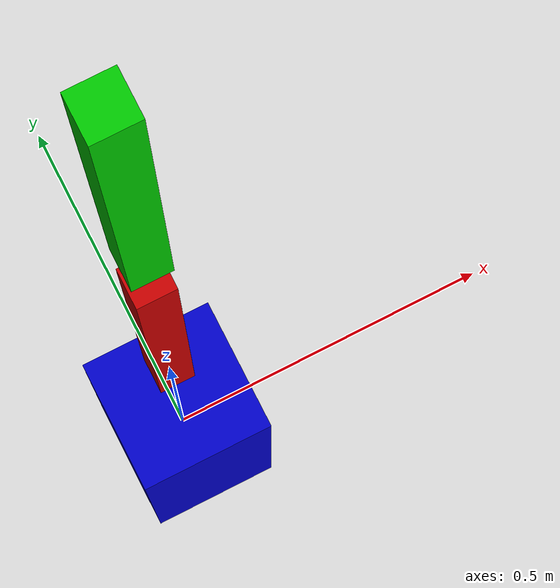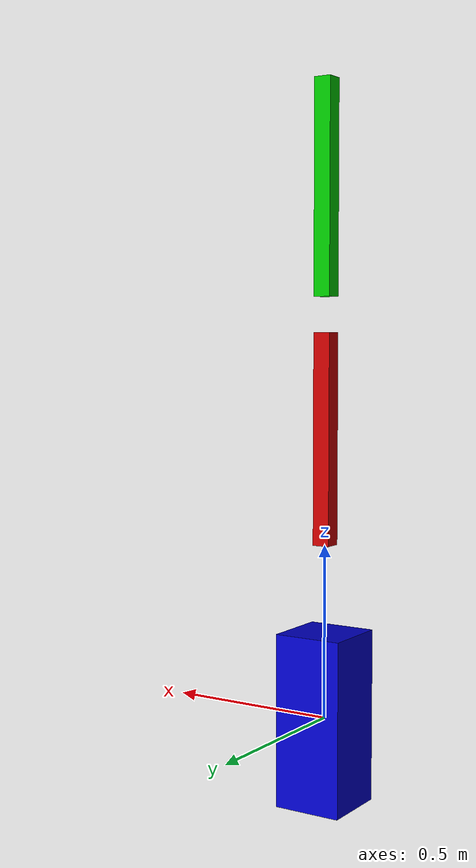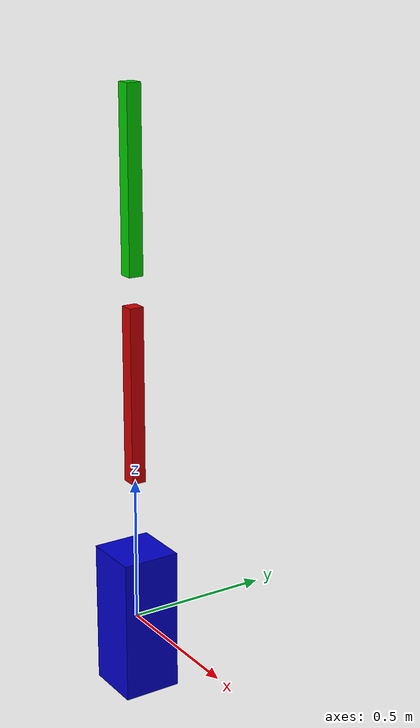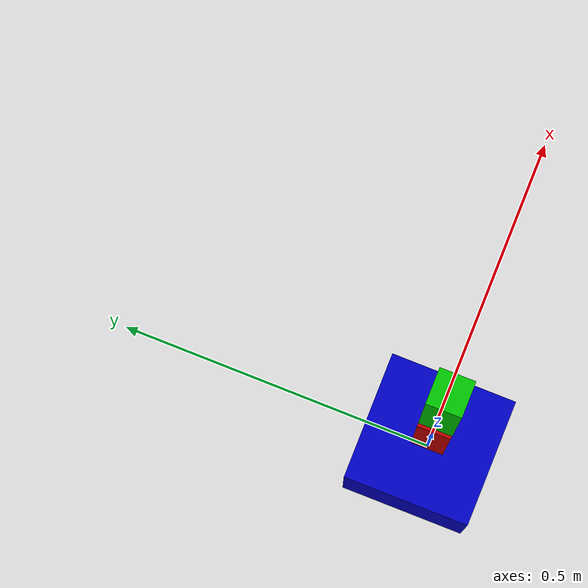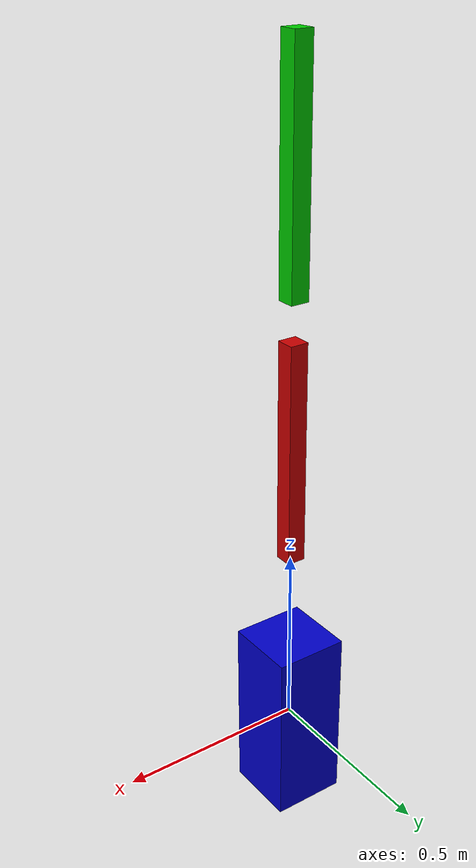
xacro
<?xml version="1.0"?>
<robot xmlns:xacro="http://www.ros.org/wiki/xacro" name="broski">

  <link name="base_link">
    <visual>
      <geometry>
        <box size="0.2 0.2 0.5"/>
      </geometry>
      <material name="blue">
        <color rgba="0 0 .8 1"/>
      </material>
    </visual>
    <collision>
      <geometry>
        <box size="0.2 0.2 0.5"/>
      </geometry>
    </collision>
    <inertial>
      <mass value="10"/>
      <inertia ixx="0.083" iyy="0.083" izz="0.0133" ixy="0" ixz="0" iyz="0"/>
    </inertial>
  </link>

  <gazebo reference="base_link">
    <static>true</static>
  </gazebo>

<gazebo reference="link1">
    <static>true</static>
  </gazebo>

  <gazebo reference="link2">
    <static>true</static>
  </gazebo>

  <link name="link1">
    <visual>
      <origin xyz="0 0 0.3"/>
      <geometry>
        <box size="0.05 0.05 0.6"/>
      </geometry>
      <material name="red">
        <color rgba="0.8 0 0 1"/>
      </material>
    </visual>
    <collision>
      <origin xyz="0 0 0.3" rpy="0 0 0"/>
      <geometry>
        <box size="0.05 0.05 0.6"/>
      </geometry>
    </collision>
    <inertial>
      <mass value="10"/>
      <inertia ixx="0.625" iyy="0.625" izz="0.13" ixy="0" ixz="0" iyz="0"/>
    </inertial>
  </link>

  <link name="world"/>

  <joint name="fixed_base" type="fixed">
    <parent link="world"/>
    <child link="base_link"/>
    <origin xyz="0 0 0" rpy="0 0 0"/>
  </joint>

  <joint name="joint1" type="revolute">
      <parent link="base_link"/>
      <child link="link1"/>
      <origin xyz="0 0 0.5" rpy="0 0 0"/>
      <axis xyz="1 0 0"/>
      <limit lower="-1.57" upper="1.57" effort= "1000.00" velocity = "0.5"/>
  </joint>

  <link name="link2">
    <visual>
      <origin xyz="0 0 0.3"/>
      <geometry>
        <box size="0.05 0.05 0.6"/>
      </geometry>
      <material name="green">
        <color rgba="0 .8 0 1"/>
      </material>
    </visual>
    <collision>
      <origin xyz="0 0 0.3" rpy="0 0 0"/>
      <geometry>
        <box size="0.05 0.05 0.6"/>
      </geometry>
    </collision>
    <inertial>
      <mass value="10"/>
      <inertia ixx="0.625" iyy="0.625" izz="0.13" ixy="0" ixz="0" iyz="0"/>
    </inertial>
  </link>

  <joint name="joint2" type="revolute">
      <parent link="link1"/>
      <child link="link2"/>
      <origin xyz="0 0 0.7" rpy="0 0 0"/>
      <axis xyz="1 0 0"/>
      <limit lower="-1.57" upper="1.57" effort= "10000.00" velocity = "0.5"/>
  </joint>

 <gazebo reference="link2">
  <sensor name="imu_sensor" type="imu">
    <always_on>true</always_on>
    <update_rate>100.0</update_rate>
    <imu>
      <topic>/imu/data</topic>
      <gaussian_noise>0.0</gaussian_noise>
    </imu>
    <plugin name="imu_plugin" filename="libgazebo_ros_imu_sensor.so">
      <ros>
        <remapping>~/out:=/imu/data</remapping>
      </ros>
      <frame_name>link2</frame_name>
    </plugin>
  </sensor>
</gazebo>

</robot>
